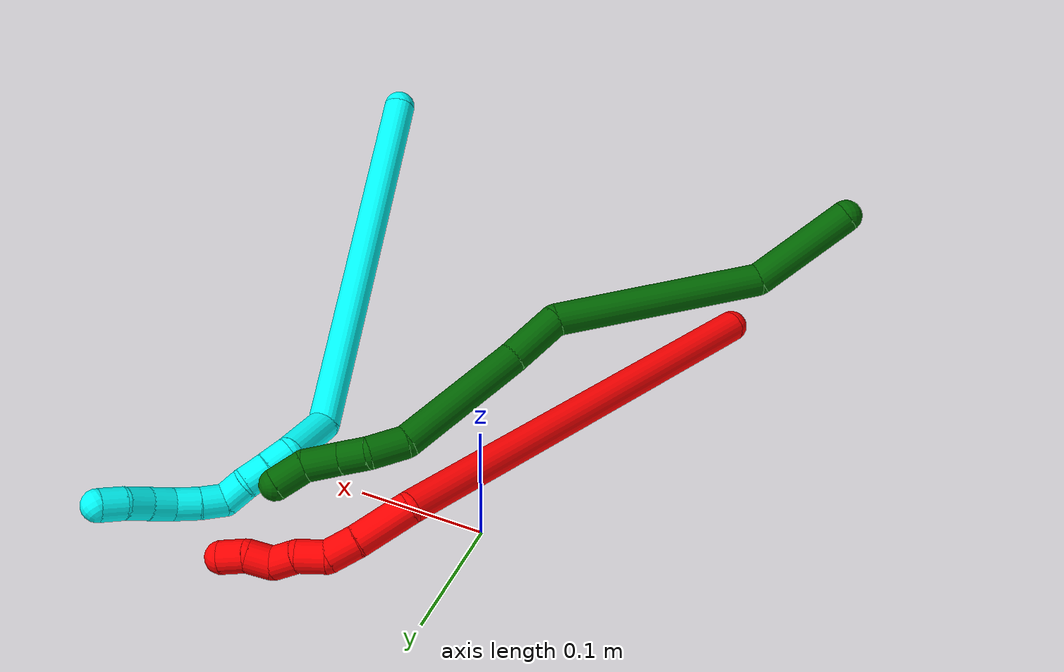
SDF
<sdf version="1.7">
 <world name="default">
  <model name="2">
   <static>0</static>
   <link name="2">
    <collision name="collision-cylinder-e_1_1_4">
     <pose>0.015736 0.170426 0.034529 -1.3709 0.09025 -0.073815</pose>
     <geometry><cylinder><radius>0.0125</radius><length>0.349198</length></cylinder></geometry>
     <surface>
      <friction><ode><mu>1.16</mu><mu2>1.16</mu2><slip1>0</slip1><slip2>0</slip2></ode></friction>
      <contact><ode><kp>1e+06</kp><kd>1</kd><max_vel>0</max_vel><min_depth>0.001</min_depth></ode></contact>
     </surface>
    </collision>
    <visual name="visual-cylinder-e_1_1_4">
     <pose>0.015736 0.170426 0.034529 -1.3709 0.09025 -0.073815</pose>
     <geometry><cylinder><radius>0.0125</radius><length>0.349198</length></cylinder></geometry>
     <material><ambient>1 0 0 1</ambient></material>
    </visual>
    <collision name="collision-cylinder-e_2_4_5">
     <pose>0.042153 0.357975 0.07832 -1.07493 0.501784 -0.303151</pose>
     <geometry><cylinder><radius>0.0125</radius><length>0.04441</length></cylinder></geometry>
     <surface>
      <friction><ode><mu>1.16</mu><mu2>1.16</mu2><slip1>0</slip1><slip2>0</slip2></ode></friction>
      <contact><ode><kp>1e+06</kp><kd>1</kd><max_vel>0</max_vel><min_depth>0.001</min_depth></ode></contact>
     </surface>
    </collision>
    <visual name="visual-cylinder-e_2_4_5">
     <pose>0.042153 0.357975 0.07832 -1.07493 0.501784 -0.303151</pose>
     <geometry><cylinder><radius>0.0125</radius><length>0.04441</length></cylinder></geometry>
     <material><ambient>1 0 0 1</ambient></material>
    </visual>
    <collision name="collision-cylinder-e_3_5_6">
     <pose>0.058599 0.383643 0.093682 -0.950928 0.502225 -0.262631</pose>
     <geometry><cylinder><radius>0.0125</radius><length>0.023955</length></cylinder></geometry>
     <surface>
      <friction><ode><mu>1.16</mu><mu2>1.16</mu2><slip1>0</slip1><slip2>0</slip2></ode></friction>
      <contact><ode><kp>1e+06</kp><kd>1</kd><max_vel>0</max_vel><min_depth>0.001</min_depth></ode></contact>
     </surface>
    </collision>
    <visual name="visual-cylinder-e_3_5_6">
     <pose>0.058599 0.383643 0.093682 -0.950928 0.502225 -0.262631</pose>
     <geometry><cylinder><radius>0.0125</radius><length>0.023955</length></cylinder></geometry>
     <material><ambient>1 0 0 1</ambient></material>
    </visual>
    <collision name="collision-cylinder-e_4_6_7">
     <pose>0.066338 0.397583 0.109399 -0.511125 0.177107 -0.046387</pose>
     <geometry><cylinder><radius>0.0125</radius><length>0.022408</length></cylinder></geometry>
     <surface>
      <friction><ode><mu>1.16</mu><mu2>1.16</mu2><slip1>0</slip1><slip2>0</slip2></ode></friction>
      <contact><ode><kp>1e+06</kp><kd>1</kd><max_vel>0</max_vel><min_depth>0.001</min_depth></ode></contact>
     </surface>
    </collision>
    <visual name="visual-cylinder-e_4_6_7">
     <pose>0.066338 0.397583 0.109399 -0.511125 0.177107 -0.046387</pose>
     <geometry><cylinder><radius>0.0125</radius><length>0.022408</length></cylinder></geometry>
     <material><ambient>1 0 0 1</ambient></material>
    </visual>
    <collision name="collision-cylinder-e_5_7_8">
     <pose>0.073752 0.406897 0.12644 -0.485894 0.575014 -0.146312</pose>
     <geometry><cylinder><radius>0.0125</radius><length>0.020003</length></cylinder></geometry>
     <surface>
      <friction><ode><mu>1.16</mu><mu2>1.16</mu2><slip1>0</slip1><slip2>0</slip2></ode></friction>
      <contact><ode><kp>1e+06</kp><kd>1</kd><max_vel>0</max_vel><min_depth>0.001</min_depth></ode></contact>
     </surface>
    </collision>
    <visual name="visual-cylinder-e_5_7_8">
     <pose>0.073752 0.406897 0.12644 -0.485894 0.575014 -0.146312</pose>
     <geometry><cylinder><radius>0.0125</radius><length>0.020003</length></cylinder></geometry>
     <material><ambient>1 0 0 1</ambient></material>
    </visual>
    <collision name="collision-cylinder-e_6_8_9">
     <pose>0.078193 0.415206 0.142805 -0.456271 -0.099781 0.023185</pose>
     <geometry><cylinder><radius>0.0125</radius><length>0.020025</length></cylinder></geometry>
     <surface>
      <friction><ode><mu>1.16</mu><mu2>1.16</mu2><slip1>0</slip1><slip2>0</slip2></ode></friction>
      <contact><ode><kp>1e+06</kp><kd>1</kd><max_vel>0</max_vel><min_depth>0.001</min_depth></ode></contact>
     </surface>
    </collision>
    <visual name="visual-cylinder-e_6_8_9">
     <pose>0.078193 0.415206 0.142805 -0.456271 -0.099781 0.023185</pose>
     <geometry><cylinder><radius>0.0125</radius><length>0.020025</length></cylinder></geometry>
     <material><ambient>1 0 0 1</ambient></material>
    </visual>
    <collision name="collision-cylinder-e_7_9_2">
     <pose>0.080435 0.423764 0.160243 -0.456222 0.329807 -0.077229</pose>
     <geometry><cylinder><radius>0.0125</radius><length>0.020001</length></cylinder></geometry>
     <surface>
      <friction><ode><mu>1.16</mu><mu2>1.16</mu2><slip1>0</slip1><slip2>0</slip2></ode></friction>
      <contact><ode><kp>1e+06</kp><kd>1</kd><max_vel>0</max_vel><min_depth>0.001</min_depth></ode></contact>
     </surface>
    </collision>
    <visual name="visual-cylinder-e_7_9_2">
     <pose>0.080435 0.423764 0.160243 -0.456222 0.329807 -0.077229</pose>
     <geometry><cylinder><radius>0.0125</radius><length>0.020001</length></cylinder></geometry>
     <material><ambient>1 0 0 1</ambient></material>
    </visual>
    <collision name="collision-sphere-2">
     <pose>0.083674 0.427933 0.168737 0 -0 0</pose>
     <geometry><sphere><radius>0.0125</radius></sphere></geometry>
     <surface>
      <friction><ode><mu>1.16</mu><mu2>1.16</mu2><slip1>0</slip1><slip2>0</slip2></ode></friction>
      <contact><ode><kp>1e+06</kp><kd>1</kd><max_vel>0</max_vel><min_depth>0.001</min_depth></ode></contact>
     </surface>
    </collision>
    <visual name="visual-sphere-2">
     <pose>0.083674 0.427933 0.168737 0 -0 0</pose>
     <geometry><sphere><radius>0.0125</radius></sphere></geometry>
     <material><ambient>1 0 0 1</ambient></material>
    </visual>
    <collision name="collision-sphere-9">
     <pose>0.077196 0.419596 0.151749 0 -0 0</pose>
     <geometry><sphere><radius>0.0125</radius></sphere></geometry>
     <surface>
      <friction><ode><mu>1.16</mu><mu2>1.16</mu2><slip1>0</slip1><slip2>0</slip2></ode></friction>
      <contact><ode><kp>1e+06</kp><kd>1</kd><max_vel>0</max_vel><min_depth>0.001</min_depth></ode></contact>
     </surface>
    </collision>
    <visual name="visual-sphere-9">
     <pose>0.077196 0.419596 0.151749 0 -0 0</pose>
     <geometry><sphere><radius>0.0125</radius></sphere></geometry>
     <material><ambient>1 0 0 1</ambient></material>
    </visual>
    <collision name="collision-sphere-4">
     <pose>0.031472 0.340852 0.069058 0 -0 0</pose>
     <geometry><sphere><radius>0.0125</radius></sphere></geometry>
     <surface>
      <friction><ode><mu>1.16</mu><mu2>1.16</mu2><slip1>0</slip1><slip2>0</slip2></ode></friction>
      <contact><ode><kp>1e+06</kp><kd>1</kd><max_vel>0</max_vel><min_depth>0.001</min_depth></ode></contact>
     </surface>
    </collision>
    <visual name="visual-sphere-4">
     <pose>0.031472 0.340852 0.069058 0 -0 0</pose>
     <geometry><sphere><radius>0.0125</radius></sphere></geometry>
     <material><ambient>1 0 0 1</ambient></material>
    </visual>
    <collision name="collision-sphere-1">
     <geometry><sphere><radius>0.0125</radius></sphere></geometry>
     <surface>
      <friction><ode><mu>1.16</mu><mu2>1.16</mu2><slip1>0</slip1><slip2>0</slip2></ode></friction>
      <contact><ode><kp>1e+06</kp><kd>1</kd><max_vel>0</max_vel><min_depth>0.001</min_depth></ode></contact>
     </surface>
    </collision>
    <visual name="visual-sphere-1">
     <geometry><sphere><radius>0.0125</radius></sphere></geometry>
     <material><ambient>1 0 0 1</ambient></material>
    </visual>
    <collision name="collision-sphere-8">
     <pose>0.079191 0.410817 0.133862 0 -0 0</pose>
     <geometry><sphere><radius>0.0125</radius></sphere></geometry>
     <surface>
      <friction><ode><mu>1.16</mu><mu2>1.16</mu2><slip1>0</slip1><slip2>0</slip2></ode></friction>
      <contact><ode><kp>1e+06</kp><kd>1</kd><max_vel>0</max_vel><min_depth>0.001</min_depth></ode></contact>
     </surface>
    </collision>
    <visual name="visual-sphere-8">
     <pose>0.079191 0.410817 0.133862 0 -0 0</pose>
     <geometry><sphere><radius>0.0125</radius></sphere></geometry>
     <material><ambient>1 0 0 1</ambient></material>
    </visual>
    <collision name="collision-sphere-5">
     <pose>0.052833 0.375098 0.087583 0 -0 0</pose>
     <geometry><sphere><radius>0.0125</radius></sphere></geometry>
     <surface>
      <friction><ode><mu>1.16</mu><mu2>1.16</mu2><slip1>0</slip1><slip2>0</slip2></ode></friction>
      <contact><ode><kp>1e+06</kp><kd>1</kd><max_vel>0</max_vel><min_depth>0.001</min_depth></ode></contact>
     </surface>
    </collision>
    <visual name="visual-sphere-5">
     <pose>0.052833 0.375098 0.087583 0 -0 0</pose>
     <geometry><sphere><radius>0.0125</radius></sphere></geometry>
     <material><ambient>1 0 0 1</ambient></material>
    </visual>
    <collision name="collision-sphere-6">
     <pose>0.064365 0.392188 0.09978 0 -0 0</pose>
     <geometry><sphere><radius>0.0125</radius></sphere></geometry>
     <surface>
      <friction><ode><mu>1.16</mu><mu2>1.16</mu2><slip1>0</slip1><slip2>0</slip2></ode></friction>
      <contact><ode><kp>1e+06</kp><kd>1</kd><max_vel>0</max_vel><min_depth>0.001</min_depth></ode></contact>
     </surface>
    </collision>
    <visual name="visual-sphere-6">
     <pose>0.064365 0.392188 0.09978 0 -0 0</pose>
     <geometry><sphere><radius>0.0125</radius></sphere></geometry>
     <material><ambient>1 0 0 1</ambient></material>
    </visual>
    <collision name="collision-sphere-7">
     <pose>0.068312 0.402978 0.119019 0 -0 0</pose>
     <geometry><sphere><radius>0.0125</radius></sphere></geometry>
     <surface>
      <friction><ode><mu>1.16</mu><mu2>1.16</mu2><slip1>0</slip1><slip2>0</slip2></ode></friction>
      <contact><ode><kp>1e+06</kp><kd>1</kd><max_vel>0</max_vel><min_depth>0.001</min_depth></ode></contact>
     </surface>
    </collision>
    <visual name="visual-sphere-7">
     <pose>0.068312 0.402978 0.119019 0 -0 0</pose>
     <geometry><sphere><radius>0.0125</radius></sphere></geometry>
     <material><ambient>1 0 0 1</ambient></material>
    </visual>
    <inertial>
     <pose>0.029814 0.236877 0.05765 0 -0 0</pose>
     <mass>0.5</mass>
     <inertia>
      <ixx>0.003295</ixx>
      <ixy>0</ixy>
      <ixz>0</ixz>
      <iyy>0.000509</iyy>
      <iyz>0</iyz>
      <izz>-0.003803</izz>
     </inertia>
    </inertial>
   </link>
   <pose>-0.097197 -0.280732 0.026262 1.331 1.42112 1.13315</pose>
  </model>
  <model name="3">
   <static>0</static>
   <link name="3">
    <collision name="collision-cylinder-e_1_1_4">
     <pose>-0.008751 0.097196 -0.110296 -2.41924 -0.059453 0.157112</pose>
     <geometry><cylinder><radius>0.0125</radius><length>0.294542</length></cylinder></geometry>
     <surface>
      <friction><ode><mu>1.16</mu><mu2>1.16</mu2><slip1>0</slip1><slip2>0</slip2></ode></friction>
      <contact><ode><kp>1e+06</kp><kd>1</kd><max_vel>0</max_vel><min_depth>0.001</min_depth></ode></contact>
     </surface>
    </collision>
    <visual name="visual-cylinder-e_1_1_4">
     <pose>-0.008751 0.097196 -0.110296 -2.41924 -0.059453 0.157112</pose>
     <geometry><cylinder><radius>0.0125</radius><length>0.294542</length></cylinder></geometry>
     <material><ambient>0.003922 1 0.996078 1</ambient></material>
    </visual>
    <collision name="collision-cylinder-e_2_4_5">
     <pose>-0.028614 0.21272 -0.227071 -1.91063 -0.51933 0.718771</pose>
     <geometry><cylinder><radius>0.0125</radius><length>0.044785</length></cylinder></geometry>
     <surface>
      <friction><ode><mu>1.16</mu><mu2>1.16</mu2><slip1>0</slip1><slip2>0</slip2></ode></friction>
      <contact><ode><kp>1e+06</kp><kd>1</kd><max_vel>0</max_vel><min_depth>0.001</min_depth></ode></contact>
     </surface>
    </collision>
    <visual name="visual-cylinder-e_2_4_5">
     <pose>-0.028614 0.21272 -0.227071 -1.91063 -0.51933 0.718771</pose>
     <geometry><cylinder><radius>0.0125</radius><length>0.044785</length></cylinder></geometry>
     <material><ambient>0.003922 1 0.996078 1</ambient></material>
    </visual>
    <collision name="collision-cylinder-e_3_5_6">
     <pose>-0.039136 0.241161 -0.234904 -1.70377 0.057932 -0.066192</pose>
     <geometry><cylinder><radius>0.0125</radius><length>0.02044</length></cylinder></geometry>
     <surface>
      <friction><ode><mu>1.16</mu><mu2>1.16</mu2><slip1>0</slip1><slip2>0</slip2></ode></friction>
      <contact><ode><kp>1e+06</kp><kd>1</kd><max_vel>0</max_vel><min_depth>0.001</min_depth></ode></contact>
     </surface>
    </collision>
    <visual name="visual-cylinder-e_3_5_6">
     <pose>-0.039136 0.241161 -0.234904 -1.70377 0.057932 -0.066192</pose>
     <geometry><cylinder><radius>0.0125</radius><length>0.02044</length></cylinder></geometry>
     <material><ambient>0.003922 1 0.996078 1</ambient></material>
    </visual>
    <collision name="collision-cylinder-e_4_6_7">
     <pose>-0.037289 0.261255 -0.237187 -1.66377 0.124553 -0.136671</pose>
     <geometry><cylinder><radius>0.0125</radius><length>0.020204</length></cylinder></geometry>
     <surface>
      <friction><ode><mu>1.16</mu><mu2>1.16</mu2><slip1>0</slip1><slip2>0</slip2></ode></friction>
      <contact><ode><kp>1e+06</kp><kd>1</kd><max_vel>0</max_vel><min_depth>0.001</min_depth></ode></contact>
     </surface>
    </collision>
    <visual name="visual-cylinder-e_4_6_7">
     <pose>-0.037289 0.261255 -0.237187 -1.66377 0.124553 -0.136671</pose>
     <geometry><cylinder><radius>0.0125</radius><length>0.020204</length></cylinder></geometry>
     <material><ambient>0.003922 1 0.996078 1</ambient></material>
    </visual>
    <collision name="collision-cylinder-e_5_7_8">
     <pose>-0.03205 0.280345 -0.239262 -1.69573 0.409396 -0.462213</pose>
     <geometry><cylinder><radius>0.0125</radius><length>0.020017</length></cylinder></geometry>
     <surface>
      <friction><ode><mu>1.16</mu><mu2>1.16</mu2><slip1>0</slip1><slip2>0</slip2></ode></friction>
      <contact><ode><kp>1e+06</kp><kd>1</kd><max_vel>0</max_vel><min_depth>0.001</min_depth></ode></contact>
     </surface>
    </collision>
    <visual name="visual-cylinder-e_5_7_8">
     <pose>-0.03205 0.280345 -0.239262 -1.69573 0.409396 -0.462213</pose>
     <geometry><cylinder><radius>0.0125</radius><length>0.020017</length></cylinder></geometry>
     <material><ambient>0.003922 1 0.996078 1</ambient></material>
    </visual>
    <collision name="collision-cylinder-e_6_8_9">
     <pose>-0.03012 0.298784 -0.237441 -1.26311 -0.206738 0.151479</pose>
     <geometry><cylinder><radius>0.0125</radius><length>0.020005</length></cylinder></geometry>
     <surface>
      <friction><ode><mu>1.16</mu><mu2>1.16</mu2><slip1>0</slip1><slip2>0</slip2></ode></friction>
      <contact><ode><kp>1e+06</kp><kd>1</kd><max_vel>0</max_vel><min_depth>0.001</min_depth></ode></contact>
     </surface>
    </collision>
    <visual name="visual-cylinder-e_6_8_9">
     <pose>-0.03012 0.298784 -0.237441 -1.26311 -0.206738 0.151479</pose>
     <geometry><cylinder><radius>0.0125</radius><length>0.020005</length></cylinder></geometry>
     <material><ambient>0.003922 1 0.996078 1</ambient></material>
    </visual>
    <collision name="collision-cylinder-e_7_9_10">
     <pose>-0.034121 0.31711 -0.230564 -1.16055 -0.196075 0.128775</pose>
     <geometry><cylinder><radius>0.0125</radius><length>0.020003</length></cylinder></geometry>
     <surface>
      <friction><ode><mu>1.16</mu><mu2>1.16</mu2><slip1>0</slip1><slip2>0</slip2></ode></friction>
      <contact><ode><kp>1e+06</kp><kd>1</kd><max_vel>0</max_vel><min_depth>0.001</min_depth></ode></contact>
     </surface>
    </collision>
    <visual name="visual-cylinder-e_7_9_10">
     <pose>-0.034121 0.31711 -0.230564 -1.16055 -0.196075 0.128775</pose>
     <geometry><cylinder><radius>0.0125</radius><length>0.020003</length></cylinder></geometry>
     <material><ambient>0.003922 1 0.996078 1</ambient></material>
    </visual>
    <collision name="collision-cylinder-e_8_10_11">
     <pose>-0.040761 0.334299 -0.223355 -1.18825 -0.488274 0.33344</pose>
     <geometry><cylinder><radius>0.0125</radius><length>0.020001</length></cylinder></geometry>
     <surface>
      <friction><ode><mu>1.16</mu><mu2>1.16</mu2><slip1>0</slip1><slip2>0</slip2></ode></friction>
      <contact><ode><kp>1e+06</kp><kd>1</kd><max_vel>0</max_vel><min_depth>0.001</min_depth></ode></contact>
     </surface>
    </collision>
    <visual name="visual-cylinder-e_8_10_11">
     <pose>-0.040761 0.334299 -0.223355 -1.18825 -0.488274 0.33344</pose>
     <geometry><cylinder><radius>0.0125</radius><length>0.020001</length></cylinder></geometry>
     <material><ambient>0.003922 1 0.996078 1</ambient></material>
    </visual>
    <collision name="collision-cylinder-e_9_11_12">
     <pose>-0.051105 0.350271 -0.217312 -1.23146 -0.600732 0.431447</pose>
     <geometry><cylinder><radius>0.0125</radius><length>0.020001</length></cylinder></geometry>
     <surface>
      <friction><ode><mu>1.16</mu><mu2>1.16</mu2><slip1>0</slip1><slip2>0</slip2></ode></friction>
      <contact><ode><kp>1e+06</kp><kd>1</kd><max_vel>0</max_vel><min_depth>0.001</min_depth></ode></contact>
     </surface>
    </collision>
    <visual name="visual-cylinder-e_9_11_12">
     <pose>-0.051105 0.350271 -0.217312 -1.23146 -0.600732 0.431447</pose>
     <geometry><cylinder><radius>0.0125</radius><length>0.020001</length></cylinder></geometry>
     <material><ambient>0.003922 1 0.996078 1</ambient></material>
    </visual>
    <collision name="collision-cylinder-e_10_12_2">
     <pose>-0.060437 0.366908 -0.211731 -1.26102 -0.376726 0.276494</pose>
     <geometry><cylinder><radius>0.0125</radius><length>0.020003</length></cylinder></geometry>
     <surface>
      <friction><ode><mu>1.16</mu><mu2>1.16</mu2><slip1>0</slip1><slip2>0</slip2></ode></friction>
      <contact><ode><kp>1e+06</kp><kd>1</kd><max_vel>0</max_vel><min_depth>0.001</min_depth></ode></contact>
     </surface>
    </collision>
    <visual name="visual-cylinder-e_10_12_2">
     <pose>-0.060437 0.366908 -0.211731 -1.26102 -0.376726 0.276494</pose>
     <geometry><cylinder><radius>0.0125</radius><length>0.020003</length></cylinder></geometry>
     <material><ambient>0.003922 1 0.996078 1</ambient></material>
    </visual>
    <collision name="collision-sphere-2">
     <pose>-0.064116 0.375765 -0.208896 0 -0 0</pose>
     <geometry><sphere><radius>0.0125</radius></sphere></geometry>
     <surface>
      <friction><ode><mu>1.16</mu><mu2>1.16</mu2><slip1>0</slip1><slip2>0</slip2></ode></friction>
      <contact><ode><kp>1e+06</kp><kd>1</kd><max_vel>0</max_vel><min_depth>0.001</min_depth></ode></contact>
     </surface>
    </collision>
    <visual name="visual-sphere-2">
     <pose>-0.064116 0.375765 -0.208896 0 -0 0</pose>
     <geometry><sphere><radius>0.0125</radius></sphere></geometry>
     <material><ambient>0.003922 1 0.996078 1</ambient></material>
    </visual>
    <collision name="collision-sphere-12">
     <pose>-0.056758 0.35805 -0.214566 0 -0 0</pose>
     <geometry><sphere><radius>0.0125</radius></sphere></geometry>
     <surface>
      <friction><ode><mu>1.16</mu><mu2>1.16</mu2><slip1>0</slip1><slip2>0</slip2></ode></friction>
      <contact><ode><kp>1e+06</kp><kd>1</kd><max_vel>0</max_vel><min_depth>0.001</min_depth></ode></contact>
     </surface>
    </collision>
    <visual name="visual-sphere-12">
     <pose>-0.056758 0.35805 -0.214566 0 -0 0</pose>
     <geometry><sphere><radius>0.0125</radius></sphere></geometry>
     <material><ambient>0.003922 1 0.996078 1</ambient></material>
    </visual>
    <collision name="collision-sphere-11">
     <pose>-0.045452 0.342492 -0.220058 0 -0 0</pose>
     <geometry><sphere><radius>0.0125</radius></sphere></geometry>
     <surface>
      <friction><ode><mu>1.16</mu><mu2>1.16</mu2><slip1>0</slip1><slip2>0</slip2></ode></friction>
      <contact><ode><kp>1e+06</kp><kd>1</kd><max_vel>0</max_vel><min_depth>0.001</min_depth></ode></contact>
     </surface>
    </collision>
    <visual name="visual-sphere-11">
     <pose>-0.045452 0.342492 -0.220058 0 -0 0</pose>
     <geometry><sphere><radius>0.0125</radius></sphere></geometry>
     <material><ambient>0.003922 1 0.996078 1</ambient></material>
    </visual>
    <collision name="collision-sphere-10">
     <pose>-0.03607 0.326105 -0.226652 0 -0 0</pose>
     <geometry><sphere><radius>0.0125</radius></sphere></geometry>
     <surface>
      <friction><ode><mu>1.16</mu><mu2>1.16</mu2><slip1>0</slip1><slip2>0</slip2></ode></friction>
      <contact><ode><kp>1e+06</kp><kd>1</kd><max_vel>0</max_vel><min_depth>0.001</min_depth></ode></contact>
     </surface>
    </collision>
    <visual name="visual-sphere-10">
     <pose>-0.03607 0.326105 -0.226652 0 -0 0</pose>
     <geometry><sphere><radius>0.0125</radius></sphere></geometry>
     <material><ambient>0.003922 1 0.996078 1</ambient></material>
    </visual>
    <collision name="collision-sphere-9">
     <pose>-0.032173 0.308114 -0.234476 0 -0 0</pose>
     <geometry><sphere><radius>0.0125</radius></sphere></geometry>
     <surface>
      <friction><ode><mu>1.16</mu><mu2>1.16</mu2><slip1>0</slip1><slip2>0</slip2></ode></friction>
      <contact><ode><kp>1e+06</kp><kd>1</kd><max_vel>0</max_vel><min_depth>0.001</min_depth></ode></contact>
     </surface>
    </collision>
    <visual name="visual-sphere-9">
     <pose>-0.032173 0.308114 -0.234476 0 -0 0</pose>
     <geometry><sphere><radius>0.0125</radius></sphere></geometry>
     <material><ambient>0.003922 1 0.996078 1</ambient></material>
    </visual>
    <collision name="collision-sphere-4">
     <pose>-0.017501 0.194392 -0.220591 0 -0 0</pose>
     <geometry><sphere><radius>0.0125</radius></sphere></geometry>
     <surface>
      <friction><ode><mu>1.16</mu><mu2>1.16</mu2><slip1>0</slip1><slip2>0</slip2></ode></friction>
      <contact><ode><kp>1e+06</kp><kd>1</kd><max_vel>0</max_vel><min_depth>0.001</min_depth></ode></contact>
     </surface>
    </collision>
    <visual name="visual-sphere-4">
     <pose>-0.017501 0.194392 -0.220591 0 -0 0</pose>
     <geometry><sphere><radius>0.0125</radius></sphere></geometry>
     <material><ambient>0.003922 1 0.996078 1</ambient></material>
    </visual>
    <collision name="collision-sphere-1">
     <geometry><sphere><radius>0.0125</radius></sphere></geometry>
     <surface>
      <friction><ode><mu>1.16</mu><mu2>1.16</mu2><slip1>0</slip1><slip2>0</slip2></ode></friction>
      <contact><ode><kp>1e+06</kp><kd>1</kd><max_vel>0</max_vel><min_depth>0.001</min_depth></ode></contact>
     </surface>
    </collision>
    <visual name="visual-sphere-1">
     <geometry><sphere><radius>0.0125</radius></sphere></geometry>
     <material><ambient>0.003922 1 0.996078 1</ambient></material>
    </visual>
    <collision name="collision-sphere-8">
     <pose>-0.028067 0.289454 -0.240406 0 -0 0</pose>
     <geometry><sphere><radius>0.0125</radius></sphere></geometry>
     <surface>
      <friction><ode><mu>1.16</mu><mu2>1.16</mu2><slip1>0</slip1><slip2>0</slip2></ode></friction>
      <contact><ode><kp>1e+06</kp><kd>1</kd><max_vel>0</max_vel><min_depth>0.001</min_depth></ode></contact>
     </surface>
    </collision>
    <visual name="visual-sphere-8">
     <pose>-0.028067 0.289454 -0.240406 0 -0 0</pose>
     <geometry><sphere><radius>0.0125</radius></sphere></geometry>
     <material><ambient>0.003922 1 0.996078 1</ambient></material>
    </visual>
    <collision name="collision-sphere-5">
     <pose>-0.039728 0.231048 -0.233551 0 -0 0</pose>
     <geometry><sphere><radius>0.0125</radius></sphere></geometry>
     <surface>
      <friction><ode><mu>1.16</mu><mu2>1.16</mu2><slip1>0</slip1><slip2>0</slip2></ode></friction>
      <contact><ode><kp>1e+06</kp><kd>1</kd><max_vel>0</max_vel><min_depth>0.001</min_depth></ode></contact>
     </surface>
    </collision>
    <visual name="visual-sphere-5">
     <pose>-0.039728 0.231048 -0.233551 0 -0 0</pose>
     <geometry><sphere><radius>0.0125</radius></sphere></geometry>
     <material><ambient>0.003922 1 0.996078 1</ambient></material>
    </visual>
    <collision name="collision-sphere-6">
     <pose>-0.038544 0.251274 -0.236257 0 -0 0</pose>
     <geometry><sphere><radius>0.0125</radius></sphere></geometry>
     <surface>
      <friction><ode><mu>1.16</mu><mu2>1.16</mu2><slip1>0</slip1><slip2>0</slip2></ode></friction>
      <contact><ode><kp>1e+06</kp><kd>1</kd><max_vel>0</max_vel><min_depth>0.001</min_depth></ode></contact>
     </surface>
    </collision>
    <visual name="visual-sphere-6">
     <pose>-0.038544 0.251274 -0.236257 0 -0 0</pose>
     <geometry><sphere><radius>0.0125</radius></sphere></geometry>
     <material><ambient>0.003922 1 0.996078 1</ambient></material>
    </visual>
    <collision name="collision-sphere-7">
     <pose>-0.036034 0.271235 -0.238118 0 -0 0</pose>
     <geometry><sphere><radius>0.0125</radius></sphere></geometry>
     <surface>
      <friction><ode><mu>1.16</mu><mu2>1.16</mu2><slip1>0</slip1><slip2>0</slip2></ode></friction>
      <contact><ode><kp>1e+06</kp><kd>1</kd><max_vel>0</max_vel><min_depth>0.001</min_depth></ode></contact>
     </surface>
    </collision>
    <visual name="visual-sphere-7">
     <pose>-0.036034 0.271235 -0.238118 0 -0 0</pose>
     <geometry><sphere><radius>0.0125</radius></sphere></geometry>
     <material><ambient>0.003922 1 0.996078 1</ambient></material>
    </visual>
    <inertial>
     <pose>-0.02077 0.174651 -0.158899 0 -0 0</pose>
     <mass>0.5</mass>
     <inertia>
      <ixx>0.002463</ixx>
      <ixy>0</ixy>
      <ixz>0</ixz>
      <iyy>-0.0012</iyy>
      <iyz>0</iyz>
      <izz>-0.001314</izz>
     </inertia>
    </inertial>
   </link>
   <pose>0.2113 -0.288502 0.152802 -0.350095 1.03681 -0.920252</pose>
  </model>
  <model name="6">
   <static>0</static>
   <link name="6">
    <collision name="collision-cylinder-e_1_1_4">
     <pose>0.013799 0.021959 -0.032404 -2.54602 0.33893 -1.01718</pose>
     <geometry><cylinder><radius>0.0125</radius><length>0.083008</length></cylinder></geometry>
     <surface>
      <friction><ode><mu>1.16</mu><mu2>1.16</mu2><slip1>0</slip1><slip2>0</slip2></ode></friction>
      <contact><ode><kp>1e+06</kp><kd>1</kd><max_vel>0</max_vel><min_depth>0.001</min_depth></ode></contact>
     </surface>
    </collision>
    <visual name="visual-cylinder-e_1_1_4">
     <pose>0.013799 0.021959 -0.032404 -2.54602 0.33893 -1.01718</pose>
     <geometry><cylinder><radius>0.0125</radius><length>0.083008</length></cylinder></geometry>
     <material><ambient>0 0.392157 0.003922 1</ambient></material>
    </visual>
    <collision name="collision-cylinder-e_2_4_5">
     <pose>0.022334 0.072241 -0.140682 -2.78431 -0.064916 0.355844</pose>
     <geometry><cylinder><radius>0.0125</radius><length>0.162319</length></cylinder></geometry>
     <surface>
      <friction><ode><mu>1.16</mu><mu2>1.16</mu2><slip1>0</slip1><slip2>0</slip2></ode></friction>
      <contact><ode><kp>1e+06</kp><kd>1</kd><max_vel>0</max_vel><min_depth>0.001</min_depth></ode></contact>
     </surface>
    </collision>
    <visual name="visual-cylinder-e_2_4_5">
     <pose>0.022334 0.072241 -0.140682 -2.78431 -0.064916 0.355844</pose>
     <geometry><cylinder><radius>0.0125</radius><length>0.162319</length></cylinder></geometry>
     <material><ambient>0 0.392157 0.003922 1</ambient></material>
    </visual>
    <collision name="collision-cylinder-e_3_5_6">
     <pose>0.027068 0.105782 -0.236202 -2.882 0.457176 -2.11903</pose>
     <geometry><cylinder><radius>0.0125</radius><length>0.045307</length></cylinder></geometry>
     <surface>
      <friction><ode><mu>1.16</mu><mu2>1.16</mu2><slip1>0</slip1><slip2>0</slip2></ode></friction>
      <contact><ode><kp>1e+06</kp><kd>1</kd><max_vel>0</max_vel><min_depth>0.001</min_depth></ode></contact>
     </surface>
    </collision>
    <visual name="visual-cylinder-e_3_5_6">
     <pose>0.027068 0.105782 -0.236202 -2.882 0.457176 -2.11903</pose>
     <geometry><cylinder><radius>0.0125</radius><length>0.045307</length></cylinder></geometry>
     <material><ambient>0 0.392157 0.003922 1</ambient></material>
    </visual>
    <collision name="collision-cylinder-e_4_6_7">
     <pose>0.057813 0.119446 -0.303857 -2.96744 0.402358 -2.33266</pose>
     <geometry><cylinder><radius>0.0125</radius><length>0.105954</length></cylinder></geometry>
     <surface>
      <friction><ode><mu>1.16</mu><mu2>1.16</mu2><slip1>0</slip1><slip2>0</slip2></ode></friction>
      <contact><ode><kp>1e+06</kp><kd>1</kd><max_vel>0</max_vel><min_depth>0.001</min_depth></ode></contact>
     </surface>
    </collision>
    <visual name="visual-cylinder-e_4_6_7">
     <pose>0.057813 0.119446 -0.303857 -2.96744 0.402358 -2.33266</pose>
     <geometry><cylinder><radius>0.0125</radius><length>0.105954</length></cylinder></geometry>
     <material><ambient>0 0.392157 0.003922 1</ambient></material>
    </visual>
    <collision name="collision-cylinder-e_5_7_8">
     <pose>0.078919 0.132599 -0.365507 -2.8094 0.024961 -0.148634</pose>
     <geometry><cylinder><radius>0.0125</radius><length>0.02887</length></cylinder></geometry>
     <surface>
      <friction><ode><mu>1.16</mu><mu2>1.16</mu2><slip1>0</slip1><slip2>0</slip2></ode></friction>
      <contact><ode><kp>1e+06</kp><kd>1</kd><max_vel>0</max_vel><min_depth>0.001</min_depth></ode></contact>
     </surface>
    </collision>
    <visual name="visual-cylinder-e_5_7_8">
     <pose>0.078919 0.132599 -0.365507 -2.8094 0.024961 -0.148634</pose>
     <geometry><cylinder><radius>0.0125</radius><length>0.02887</length></cylinder></geometry>
     <material><ambient>0 0.392157 0.003922 1</ambient></material>
    </visual>
    <collision name="collision-cylinder-e_6_8_9">
     <pose>0.078168 0.144187 -0.387302 -2.44059 -0.103734 0.282106</pose>
     <geometry><cylinder><radius>0.0125</radius><length>0.021455</length></cylinder></geometry>
     <surface>
      <friction><ode><mu>1.16</mu><mu2>1.16</mu2><slip1>0</slip1><slip2>0</slip2></ode></friction>
      <contact><ode><kp>1e+06</kp><kd>1</kd><max_vel>0</max_vel><min_depth>0.001</min_depth></ode></contact>
     </surface>
    </collision>
    <visual name="visual-cylinder-e_6_8_9">
     <pose>0.078168 0.144187 -0.387302 -2.44059 -0.103734 0.282106</pose>
     <geometry><cylinder><radius>0.0125</radius><length>0.021455</length></cylinder></geometry>
     <material><ambient>0 0.392157 0.003922 1</ambient></material>
    </visual>
    <collision name="collision-cylinder-e_7_9_10">
     <pose>0.075822 0.158924 -0.406751 -2.5339 -0.089562 0.283903</pose>
     <geometry><cylinder><radius>0.0125</radius><length>0.027626</length></cylinder></geometry>
     <surface>
      <friction><ode><mu>1.16</mu><mu2>1.16</mu2><slip1>0</slip1><slip2>0</slip2></ode></friction>
      <contact><ode><kp>1e+06</kp><kd>1</kd><max_vel>0</max_vel><min_depth>0.001</min_depth></ode></contact>
     </surface>
    </collision>
    <visual name="visual-cylinder-e_7_9_10">
     <pose>0.075822 0.158924 -0.406751 -2.5339 -0.089562 0.283903</pose>
     <geometry><cylinder><radius>0.0125</radius><length>0.027626</length></cylinder></geometry>
     <material><ambient>0 0.392157 0.003922 1</ambient></material>
    </visual>
    <collision name="collision-cylinder-e_8_10_2">
     <pose>0.078195 0.172555 -0.428801 -2.64879 0.287406 -1.04416</pose>
     <geometry><cylinder><radius>0.0125</radius><length>0.025461</length></cylinder></geometry>
     <surface>
      <friction><ode><mu>1.16</mu><mu2>1.16</mu2><slip1>0</slip1><slip2>0</slip2></ode></friction>
      <contact><ode><kp>1e+06</kp><kd>1</kd><max_vel>0</max_vel><min_depth>0.001</min_depth></ode></contact>
     </surface>
    </collision>
    <visual name="visual-cylinder-e_8_10_2">
     <pose>0.078195 0.172555 -0.428801 -2.64879 0.287406 -1.04416</pose>
     <geometry><cylinder><radius>0.0125</radius><length>0.025461</length></cylinder></geometry>
     <material><ambient>0 0.392157 0.003922 1</ambient></material>
    </visual>
    <collision name="collision-sphere-2">
     <pose>0.081804 0.178331 -0.439557 0 -0 0</pose>
     <geometry><sphere><radius>0.0125</radius></sphere></geometry>
     <surface>
      <friction><ode><mu>1.16</mu><mu2>1.16</mu2><slip1>0</slip1><slip2>0</slip2></ode></friction>
      <contact><ode><kp>1e+06</kp><kd>1</kd><max_vel>0</max_vel><min_depth>0.001</min_depth></ode></contact>
     </surface>
    </collision>
    <visual name="visual-sphere-2">
     <pose>0.081804 0.178331 -0.439557 0 -0 0</pose>
     <geometry><sphere><radius>0.0125</radius></sphere></geometry>
     <material><ambient>0 0.392157 0.003922 1</ambient></material>
    </visual>
    <collision name="collision-sphere-10">
     <pose>0.074586 0.166779 -0.418045 0 -0 0</pose>
     <geometry><sphere><radius>0.0125</radius></sphere></geometry>
     <surface>
      <friction><ode><mu>1.16</mu><mu2>1.16</mu2><slip1>0</slip1><slip2>0</slip2></ode></friction>
      <contact><ode><kp>1e+06</kp><kd>1</kd><max_vel>0</max_vel><min_depth>0.001</min_depth></ode></contact>
     </surface>
    </collision>
    <visual name="visual-sphere-10">
     <pose>0.074586 0.166779 -0.418045 0 -0 0</pose>
     <geometry><sphere><radius>0.0125</radius></sphere></geometry>
     <material><ambient>0 0.392157 0.003922 1</ambient></material>
    </visual>
    <collision name="collision-sphere-9">
     <pose>0.077057 0.151069 -0.395456 0 -0 0</pose>
     <geometry><sphere><radius>0.0125</radius></sphere></geometry>
     <surface>
      <friction><ode><mu>1.16</mu><mu2>1.16</mu2><slip1>0</slip1><slip2>0</slip2></ode></friction>
      <contact><ode><kp>1e+06</kp><kd>1</kd><max_vel>0</max_vel><min_depth>0.001</min_depth></ode></contact>
     </surface>
    </collision>
    <visual name="visual-sphere-9">
     <pose>0.077057 0.151069 -0.395456 0 -0 0</pose>
     <geometry><sphere><radius>0.0125</radius></sphere></geometry>
     <material><ambient>0 0.392157 0.003922 1</ambient></material>
    </visual>
    <collision name="collision-sphere-4">
     <pose>0.027599 0.043917 -0.064808 0 -0 0</pose>
     <geometry><sphere><radius>0.0125</radius></sphere></geometry>
     <surface>
      <friction><ode><mu>1.16</mu><mu2>1.16</mu2><slip1>0</slip1><slip2>0</slip2></ode></friction>
      <contact><ode><kp>1e+06</kp><kd>1</kd><max_vel>0</max_vel><min_depth>0.001</min_depth></ode></contact>
     </surface>
    </collision>
    <visual name="visual-sphere-4">
     <pose>0.027599 0.043917 -0.064808 0 -0 0</pose>
     <geometry><sphere><radius>0.0125</radius></sphere></geometry>
     <material><ambient>0 0.392157 0.003922 1</ambient></material>
    </visual>
    <collision name="collision-sphere-1">
     <geometry><sphere><radius>0.0125</radius></sphere></geometry>
     <surface>
      <friction><ode><mu>1.16</mu><mu2>1.16</mu2><slip1>0</slip1><slip2>0</slip2></ode></friction>
      <contact><ode><kp>1e+06</kp><kd>1</kd><max_vel>0</max_vel><min_depth>0.001</min_depth></ode></contact>
     </surface>
    </collision>
    <visual name="visual-sphere-1">
     <geometry><sphere><radius>0.0125</radius></sphere></geometry>
     <material><ambient>0 0.392157 0.003922 1</ambient></material>
    </visual>
    <collision name="collision-sphere-8">
     <pose>0.079279 0.137305 -0.379148 0 -0 0</pose>
     <geometry><sphere><radius>0.0125</radius></sphere></geometry>
     <surface>
      <friction><ode><mu>1.16</mu><mu2>1.16</mu2><slip1>0</slip1><slip2>0</slip2></ode></friction>
      <contact><ode><kp>1e+06</kp><kd>1</kd><max_vel>0</max_vel><min_depth>0.001</min_depth></ode></contact>
     </surface>
    </collision>
    <visual name="visual-sphere-8">
     <pose>0.079279 0.137305 -0.379148 0 -0 0</pose>
     <geometry><sphere><radius>0.0125</radius></sphere></geometry>
     <material><ambient>0 0.392157 0.003922 1</ambient></material>
    </visual>
    <collision name="collision-sphere-5">
     <pose>0.017069 0.100565 -0.216556 0 -0 0</pose>
     <geometry><sphere><radius>0.0125</radius></sphere></geometry>
     <surface>
      <friction><ode><mu>1.16</mu><mu2>1.16</mu2><slip1>0</slip1><slip2>0</slip2></ode></friction>
      <contact><ode><kp>1e+06</kp><kd>1</kd><max_vel>0</max_vel><min_depth>0.001</min_depth></ode></contact>
     </surface>
    </collision>
    <visual name="visual-sphere-5">
     <pose>0.017069 0.100565 -0.216556 0 -0 0</pose>
     <geometry><sphere><radius>0.0125</radius></sphere></geometry>
     <material><ambient>0 0.392157 0.003922 1</ambient></material>
    </visual>
    <collision name="collision-sphere-6">
     <pose>0.037068 0.111 -0.255848 0 -0 0</pose>
     <geometry><sphere><radius>0.0125</radius></sphere></geometry>
     <surface>
      <friction><ode><mu>1.16</mu><mu2>1.16</mu2><slip1>0</slip1><slip2>0</slip2></ode></friction>
      <contact><ode><kp>1e+06</kp><kd>1</kd><max_vel>0</max_vel><min_depth>0.001</min_depth></ode></contact>
     </surface>
    </collision>
    <visual name="visual-sphere-6">
     <pose>0.037068 0.111 -0.255848 0 -0 0</pose>
     <geometry><sphere><radius>0.0125</radius></sphere></geometry>
     <material><ambient>0 0.392157 0.003922 1</ambient></material>
    </visual>
    <collision name="collision-sphere-7">
     <pose>0.078558 0.127893 -0.351865 0 -0 0</pose>
     <geometry><sphere><radius>0.0125</radius></sphere></geometry>
     <surface>
      <friction><ode><mu>1.16</mu><mu2>1.16</mu2><slip1>0</slip1><slip2>0</slip2></ode></friction>
      <contact><ode><kp>1e+06</kp><kd>1</kd><max_vel>0</max_vel><min_depth>0.001</min_depth></ode></contact>
     </surface>
    </collision>
    <visual name="visual-sphere-7">
     <pose>0.078558 0.127893 -0.351865 0 -0 0</pose>
     <geometry><sphere><radius>0.0125</radius></sphere></geometry>
     <material><ambient>0 0.392157 0.003922 1</ambient></material>
    </visual>
    <inertial>
     <pose>0.040327 0.093406 -0.218876 0 -0 0</pose>
     <mass>0.5</mass>
     <inertia>
      <ixx>0.000317</ixx>
      <ixy>0</ixy>
      <ixz>0</ixz>
      <iyy>-0.000234</iyy>
      <iyz>0</iyz>
      <izz>-0.00025</izz>
     </inertia>
    </inertial>
   </link>
   <pose>-0.175398 -0.288503 0.156446 -1.78261 0.714386 2.38041</pose>
  </model>
 </world>
</sdf>
